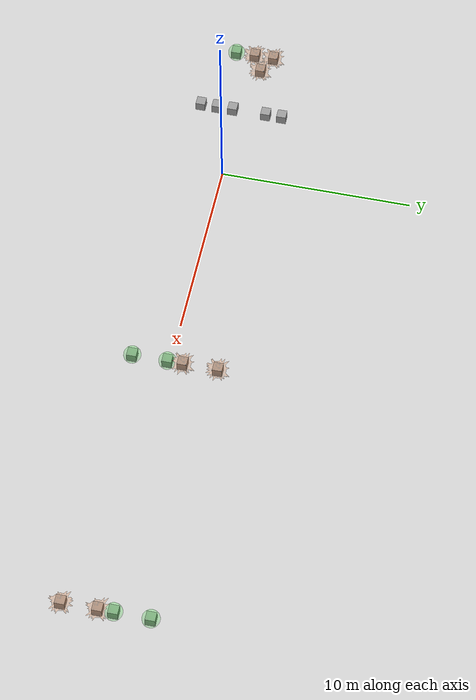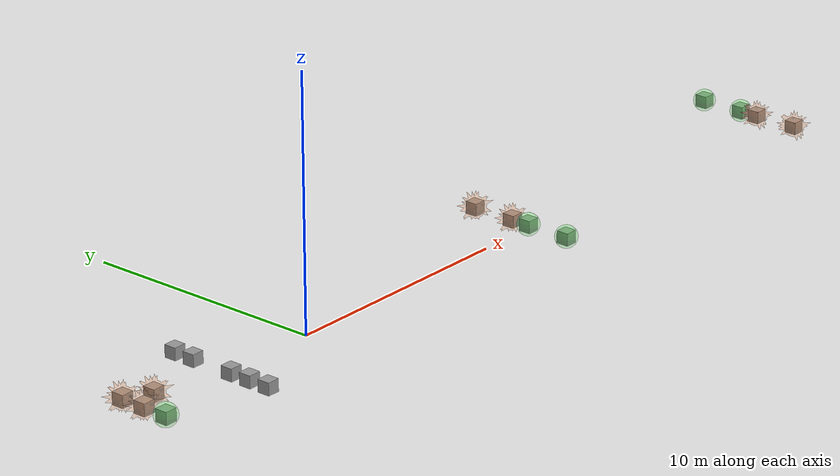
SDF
<sdf version="1.6">
 <world name="default">
  <light name="sun" type="directional">
   <pose>0 0 10 0 -0 0</pose>
   <diffuse>0.8 0.8 0.8 1</diffuse>
   <specular>0.2 0.2 0.2 1</specular>
   <attenuation>
    <range>1000</range>
    <constant>0.9</constant>
    <linear>0.01</linear>
    <quadratic>0.001</quadratic>
   </attenuation>
   <direction>-0.5 0.1 -0.9</direction>
  </light>
  <gravity>0 0 -9.8</gravity>
  <magnetic_field>6e-06 2.3e-05 -4.2e-05</magnetic_field>
  <atmosphere type="adiabatic"/>
  <physics name="default_physics" default="0" type="ode">
   <max_step_size>0.001</max_step_size>
   <real_time_factor>1</real_time_factor>
   <real_time_update_rate>1000</real_time_update_rate>
  </physics>
  <scene><ambient>0.4 0.4 0.4 1</ambient><background>0.9 0.9 0.9 1</background><shadows>1</shadows></scene>
  <spherical_coordinates>
   <surface_model>EARTH_WGS84</surface_model>
   <latitude_deg>0</latitude_deg>
   <longitude_deg>0</longitude_deg>
   <elevation>0</elevation>
   <heading_deg>0</heading_deg>
  </spherical_coordinates>
  <model name="test_cell_II">
   <static>0</static>
   <static>0</static>
   <link name="normal_cue_1::vis_cue_repel">
    <inertial>
     <mass>1</mass>
     <inertia>
      <ixx>0.166667</ixx>
      <ixy>0</ixy>
      <ixz>0</ixz>
      <iyy>0.166667</iyy>
      <iyz>0</iyz>
      <izz>0.166667</izz>
     </inertia>
    </inertial>
    <collision name="collision"><geometry><box><size>0.5 0.5 0.5</size></box></geometry></collision>
    <visual name="box_visual">
     <geometry><box><size>0.5 0.5 0.5</size></box></geometry>
     <material>
      <script><name>Gazebo/Grey</name><uri>file://media/materials/scripts/gazebo.material</uri></script>
     </material>
    </visual>
    <pose>3.9 -2.2 0.25 0 -0 0</pose>
   </link>
   <static>0</static>
   <link name="normal_cue_2::vis_cue_repel">
    <inertial>
     <mass>1</mass>
     <inertia>
      <ixx>0.166667</ixx>
      <ixy>0</ixy>
      <ixz>0</ixz>
      <iyy>0.166667</iyy>
      <iyz>0</iyz>
      <izz>0.166667</izz>
     </inertia>
    </inertial>
    <collision name="collision"><geometry><box><size>0.5 0.5 0.5</size></box></geometry></collision>
    <visual name="box_visual">
     <geometry><box><size>0.5 0.5 0.5</size></box></geometry>
     <material>
      <script><name>Gazebo/Grey</name><uri>file://media/materials/scripts/gazebo.material</uri></script>
     </material>
    </visual>
    <pose>3.9 -1.33 0.25 0 -0 0</pose>
   </link>
   <static>0</static>
   <link name="normal_cue_3::vis_cue_repel">
    <inertial>
     <mass>1</mass>
     <inertia>
      <ixx>0.166667</ixx>
      <ixy>0</ixy>
      <ixz>0</ixz>
      <iyy>0.166667</iyy>
      <iyz>0</iyz>
      <izz>0.166667</izz>
     </inertia>
    </inertial>
    <collision name="collision"><geometry><box><size>0.5 0.5 0.5</size></box></geometry></collision>
    <visual name="box_visual">
     <geometry><box><size>0.5 0.5 0.5</size></box></geometry>
     <material>
      <script><name>Gazebo/Grey</name><uri>file://media/materials/scripts/gazebo.material</uri></script>
     </material>
    </visual>
    <pose>3.9 -0.47 0.25 0 -0 0</pose>
   </link>
   <static>0</static>
   <link name="normal_cue_4::vis_cue_repel">
    <inertial>
     <mass>1</mass>
     <inertia>
      <ixx>0.166667</ixx>
      <ixy>0</ixy>
      <ixz>0</ixz>
      <iyy>0.166667</iyy>
      <iyz>0</iyz>
      <izz>0.166667</izz>
     </inertia>
    </inertial>
    <collision name="collision"><geometry><box><size>0.5 0.5 0.5</size></box></geometry></collision>
    <visual name="box_visual">
     <geometry><box><size>0.5 0.5 0.5</size></box></geometry>
     <material>
      <script><name>Gazebo/Grey</name><uri>file://media/materials/scripts/gazebo.material</uri></script>
     </material>
    </visual>
    <pose>3.9 1.33 0.25 0 -0 0</pose>
   </link>
   <static>0</static>
   <link name="normal_cue_5::vis_cue_repel">
    <inertial>
     <mass>1</mass>
     <inertia>
      <ixx>0.166667</ixx>
      <ixy>0</ixy>
      <ixz>0</ixz>
      <iyy>0.166667</iyy>
      <iyz>0</iyz>
      <izz>0.166667</izz>
     </inertia>
    </inertial>
    <collision name="collision"><geometry><box><size>0.5 0.5 0.5</size></box></geometry></collision>
    <visual name="box_visual">
     <geometry><box><size>0.5 0.5 0.5</size></box></geometry>
     <material>
      <script><name>Gazebo/Grey</name><uri>file://media/materials/scripts/gazebo.material</uri></script>
     </material>
    </visual>
    <pose>3.9 2.2 0.25 0 -0 0</pose>
   </link>
   <static>0</static>
   <link name="repelling_cue_1::vis_cue_repel">
    <inertial>
     <mass>1</mass>
     <inertia>
      <ixx>0.166667</ixx>
      <ixy>0</ixy>
      <ixz>0</ixz>
      <iyy>0.166667</iyy>
      <iyz>0</iyz>
      <izz>0.166667</izz>
     </inertia>
    </inertial>
    <collision name="collision"><geometry><box><size>0.5 0.5 0.5</size></box></geometry></collision>
    <visual name="box_visual">
     <geometry><box><size>0.5 0.5 0.5</size></box></geometry>
     <material>
      <script><name>Gazebo/Grey</name><uri>file://media/materials/scripts/gazebo.material</uri></script>
     </material>
    </visual>
    <visual name="cue_visual">
     <geometry><mesh><uri>model://repelling_cue_2.dae</uri><scale>0.85 0.85 0.85</scale></mesh></geometry>
     <material>
      <ambient>1 0.4 0 0.2</ambient>
      <diffuse>1 0.4 0 0.2</diffuse>
      <specular>1 0.4 0 0.5</specular>
      <emissive>0.5 0.2 0 0.1</emissive>
     </material>
    </visual>
    <pose>0 -0.08 0.25 0 -0 0</pose>
   </link>
   <static>0</static>
   <link name="repelling_cue_2::vis_cue_repel">
    <inertial>
     <mass>1</mass>
     <inertia>
      <ixx>0.166667</ixx>
      <ixy>0</ixy>
      <ixz>0</ixz>
      <iyy>0.166667</iyy>
      <iyz>0</iyz>
      <izz>0.166667</izz>
     </inertia>
    </inertial>
    <collision name="collision"><geometry><box><size>0.5 0.5 0.5</size></box></geometry></collision>
    <visual name="box_visual">
     <geometry><box><size>0.5 0.5 0.5</size></box></geometry>
     <material>
      <script><name>Gazebo/Grey</name><uri>file://media/materials/scripts/gazebo.material</uri></script>
     </material>
    </visual>
    <visual name="cue_visual">
     <geometry><mesh><uri>model://repelling_cue_2.dae</uri><scale>0.85 0.85 0.85</scale></mesh></geometry>
     <material>
      <ambient>1 0.4 0 0.2</ambient>
      <diffuse>1 0.4 0 0.2</diffuse>
      <specular>1 0.4 0 0.5</specular>
      <emissive>0.5 0.2 0 0.1</emissive>
     </material>
    </visual>
    <pose>0 0.94 0.25 0 -0 0</pose>
   </link>
   <static>0</static>
   <link name="repelling_cue_3::vis_cue_repel">
    <inertial>
     <mass>1</mass>
     <inertia>
      <ixx>0.166667</ixx>
      <ixy>0</ixy>
      <ixz>0</ixz>
      <iyy>0.166667</iyy>
      <iyz>0</iyz>
      <izz>0.166667</izz>
     </inertia>
    </inertial>
    <collision name="collision"><geometry><box><size>0.5 0.5 0.5</size></box></geometry></collision>
    <visual name="box_visual">
     <geometry><box><size>0.5 0.5 0.5</size></box></geometry>
     <material>
      <script><name>Gazebo/Grey</name><uri>file://media/materials/scripts/gazebo.material</uri></script>
     </material>
    </visual>
    <visual name="cue_visual">
     <geometry><mesh><uri>model://repelling_cue_2.dae</uri><scale>0.85 0.85 0.85</scale></mesh></geometry>
     <material>
      <ambient>1 0.4 0 0.2</ambient>
      <diffuse>1 0.4 0 0.2</diffuse>
      <specular>1 0.4 0 0.5</specular>
      <emissive>0.5 0.2 0 0.1</emissive>
     </material>
    </visual>
    <pose>1 0.43 0.25 0 -0 0</pose>
   </link>
   <static>0</static>
   <link name="attracting_cue_1::vis_cue_attract">
    <inertial>
     <mass>1</mass>
     <inertia>
      <ixx>0.166667</ixx>
      <ixy>0</ixy>
      <ixz>0</ixz>
      <iyy>0.166667</iyy>
      <iyz>0</iyz>
      <izz>0.166667</izz>
     </inertia>
    </inertial>
    <collision name="collision"><geometry><box><size>0.5 0.5 0.5</size></box></geometry></collision>
    <visual name="box_visual">
     <geometry><box><size>0.5 0.5 0.5</size></box></geometry>
     <material>
      <script><name>Gazebo/Grey</name><uri>file://media/materials/scripts/gazebo.material</uri></script>
     </material>
    </visual>
    <visual name="cue_visual">
     <geometry><sphere><radius>0.45</radius></sphere></geometry>
     <material>
      <ambient>0 1 0 0.15</ambient>
      <diffuse>0 1 0 0.15</diffuse>
      <specular>0 1 0 0.15</specular>
      <emissive>0 0 0 0</emissive>
     </material>
    </visual>
    <pose>0 -1.1 0.25 0 -0 0</pose>
   </link>
   <pose>-8.15814 0.114936 -1.8e-05 7e-06 -7e-06 0</pose>
  </model>
  <model name="test_cell_I">
   <static>0</static>
   <static>0</static>
   <link name="attract_cue_1::vis_cue_attract">
    <inertial>
     <mass>1</mass>
     <inertia>
      <ixx>0.166667</ixx>
      <ixy>0</ixy>
      <ixz>0</ixz>
      <iyy>0.166667</iyy>
      <iyz>0</iyz>
      <izz>0.166667</izz>
     </inertia>
    </inertial>
    <collision name="collision"><geometry><box><size>0.5 0.5 0.5</size></box></geometry></collision>
    <visual name="box_visual">
     <geometry><box><size>0.5 0.5 0.5</size></box></geometry>
     <material>
      <script><name>Gazebo/Grey</name><uri>file://media/materials/scripts/gazebo.material</uri></script>
     </material>
    </visual>
    <visual name="cue_visual">
     <geometry><sphere><radius>0.45</radius></sphere></geometry>
     <material>
      <ambient>0 1 0 0.15</ambient>
      <diffuse>0 1 0 0.15</diffuse>
      <specular>0 1 0 0.15</specular>
      <emissive>0 0 0 0</emissive>
     </material>
    </visual>
    <pose>0 -2.2 0.25 0 -0 0</pose>
   </link>
   <static>0</static>
   <link name="attract_cue_2::vis_cue_attract">
    <inertial>
     <mass>1</mass>
     <inertia>
      <ixx>0.166667</ixx>
      <ixy>0</ixy>
      <ixz>0</ixz>
      <iyy>0.166667</iyy>
      <iyz>0</iyz>
      <izz>0.166667</izz>
     </inertia>
    </inertial>
    <collision name="collision"><geometry><box><size>0.5 0.5 0.5</size></box></geometry></collision>
    <visual name="box_visual">
     <geometry><box><size>0.5 0.5 0.5</size></box></geometry>
     <material>
      <script><name>Gazebo/Grey</name><uri>file://media/materials/scripts/gazebo.material</uri></script>
     </material>
    </visual>
    <visual name="cue_visual">
     <geometry><sphere><radius>0.45</radius></sphere></geometry>
     <material>
      <ambient>0 1 0 0.15</ambient>
      <diffuse>0 1 0 0.15</diffuse>
      <specular>0 1 0 0.15</specular>
      <emissive>0 0 0 0</emissive>
     </material>
    </visual>
    <pose>0 -0.39 0.25 0 -0 0</pose>
   </link>
   <static>0</static>
   <link name="repel_cue_1::vis_cue_repel">
    <inertial>
     <mass>1</mass>
     <inertia>
      <ixx>0.166667</ixx>
      <ixy>0</ixy>
      <ixz>0</ixz>
      <iyy>0.166667</iyy>
      <iyz>0</iyz>
      <izz>0.166667</izz>
     </inertia>
    </inertial>
    <collision name="collision"><geometry><box><size>0.5 0.5 0.5</size></box></geometry></collision>
    <visual name="box_visual">
     <geometry><box><size>0.5 0.5 0.5</size></box></geometry>
     <material>
      <script><name>Gazebo/Grey</name><uri>file://media/materials/scripts/gazebo.material</uri></script>
     </material>
    </visual>
    <visual name="cue_visual">
     <geometry><mesh><uri>model://repelling_cue_2.dae</uri><scale>0.85 0.85 0.85</scale></mesh></geometry>
     <material>
      <ambient>1 0.4 0 0.2</ambient>
      <diffuse>1 0.4 0 0.2</diffuse>
      <specular>1 0.4 0 0.5</specular>
      <emissive>0.5 0.2 0 0.1</emissive>
     </material>
    </visual>
    <pose>0 2.2 0.25 0 -0 0</pose>
   </link>
   <static>0</static>
   <link name="repel_cue_2::vis_cue_repel">
    <inertial>
     <mass>1</mass>
     <inertia>
      <ixx>0.166667</ixx>
      <ixy>0</ixy>
      <ixz>0</ixz>
      <iyy>0.166667</iyy>
      <iyz>0</iyz>
      <izz>0.166667</izz>
     </inertia>
    </inertial>
    <collision name="collision"><geometry><box><size>0.5 0.5 0.5</size></box></geometry></collision>
    <visual name="box_visual">
     <geometry><box><size>0.5 0.5 0.5</size></box></geometry>
     <material>
      <script><name>Gazebo/Grey</name><uri>file://media/materials/scripts/gazebo.material</uri></script>
     </material>
    </visual>
    <visual name="cue_visual">
     <geometry><mesh><uri>model://repelling_cue_2.dae</uri><scale>0.85 0.85 0.85</scale></mesh></geometry>
     <material>
      <ambient>1 0.4 0 0.2</ambient>
      <diffuse>1 0.4 0 0.2</diffuse>
      <specular>1 0.4 0 0.5</specular>
      <emissive>0.5 0.2 0 0.1</emissive>
     </material>
    </visual>
    <pose>0 0.39 0.25 0 -0 0</pose>
   </link>
   <pose>12.3433 0.262142 -1.9e-05 -7e-06 7e-06 0</pose>
  </model>
  <model name="test_cell_I_0">
   <static>0</static>
   <static>0</static>
   <link name="attract_cue_1::vis_cue_attract">
    <inertial>
     <mass>1</mass>
     <inertia>
      <ixx>0.166667</ixx>
      <ixy>0</ixy>
      <ixz>0</ixz>
      <iyy>0.166667</iyy>
      <iyz>0</iyz>
      <izz>0.166667</izz>
     </inertia>
    </inertial>
    <collision name="collision"><geometry><box><size>0.5 0.5 0.5</size></box></geometry></collision>
    <visual name="box_visual">
     <geometry><box><size>0.5 0.5 0.5</size></box></geometry>
     <material>
      <script><name>Gazebo/Grey</name><uri>file://media/materials/scripts/gazebo.material</uri></script>
     </material>
    </visual>
    <visual name="cue_visual">
     <geometry><sphere><radius>0.45</radius></sphere></geometry>
     <material>
      <ambient>0 1 0 0.15</ambient>
      <diffuse>0 1 0 0.15</diffuse>
      <specular>0 1 0 0.15</specular>
      <emissive>0 0 0 0</emissive>
     </material>
    </visual>
    <pose>0 -2.2 0.25 0 -0 0</pose>
   </link>
   <static>0</static>
   <link name="attract_cue_2::vis_cue_attract">
    <inertial>
     <mass>1</mass>
     <inertia>
      <ixx>0.166667</ixx>
      <ixy>0</ixy>
      <ixz>0</ixz>
      <iyy>0.166667</iyy>
      <iyz>0</iyz>
      <izz>0.166667</izz>
     </inertia>
    </inertial>
    <collision name="collision"><geometry><box><size>0.5 0.5 0.5</size></box></geometry></collision>
    <visual name="box_visual">
     <geometry><box><size>0.5 0.5 0.5</size></box></geometry>
     <material>
      <script><name>Gazebo/Grey</name><uri>file://media/materials/scripts/gazebo.material</uri></script>
     </material>
    </visual>
    <visual name="cue_visual">
     <geometry><sphere><radius>0.45</radius></sphere></geometry>
     <material>
      <ambient>0 1 0 0.15</ambient>
      <diffuse>0 1 0 0.15</diffuse>
      <specular>0 1 0 0.15</specular>
      <emissive>0 0 0 0</emissive>
     </material>
    </visual>
    <pose>0 -0.39 0.25 0 -0 0</pose>
   </link>
   <static>0</static>
   <link name="repel_cue_1::vis_cue_repel">
    <inertial>
     <mass>1</mass>
     <inertia>
      <ixx>0.166667</ixx>
      <ixy>0</ixy>
      <ixz>0</ixz>
      <iyy>0.166667</iyy>
      <iyz>0</iyz>
      <izz>0.166667</izz>
     </inertia>
    </inertial>
    <collision name="collision"><geometry><box><size>0.5 0.5 0.5</size></box></geometry></collision>
    <visual name="box_visual">
     <geometry><box><size>0.5 0.5 0.5</size></box></geometry>
     <material>
      <script><name>Gazebo/Grey</name><uri>file://media/materials/scripts/gazebo.material</uri></script>
     </material>
    </visual>
    <visual name="cue_visual">
     <geometry><mesh><uri>model://repelling_cue_2.dae</uri><scale>0.85 0.85 0.85</scale></mesh></geometry>
     <material>
      <ambient>1 0.4 0 0.2</ambient>
      <diffuse>1 0.4 0 0.2</diffuse>
      <specular>1 0.4 0 0.5</specular>
      <emissive>0.5 0.2 0 0.1</emissive>
     </material>
    </visual>
    <pose>0 2.2 0.25 0 -0 0</pose>
   </link>
   <static>0</static>
   <link name="repel_cue_2::vis_cue_repel">
    <inertial>
     <mass>1</mass>
     <inertia>
      <ixx>0.166667</ixx>
      <ixy>0</ixy>
      <ixz>0</ixz>
      <iyy>0.166667</iyy>
      <iyz>0</iyz>
      <izz>0.166667</izz>
     </inertia>
    </inertial>
    <collision name="collision"><geometry><box><size>0.5 0.5 0.5</size></box></geometry></collision>
    <visual name="box_visual">
     <geometry><box><size>0.5 0.5 0.5</size></box></geometry>
     <material>
      <script><name>Gazebo/Grey</name><uri>file://media/materials/scripts/gazebo.material</uri></script>
     </material>
    </visual>
    <visual name="cue_visual">
     <geometry><mesh><uri>model://repelling_cue_2.dae</uri><scale>0.85 0.85 0.85</scale></mesh></geometry>
     <material>
      <ambient>1 0.4 0 0.2</ambient>
      <diffuse>1 0.4 0 0.2</diffuse>
      <specular>1 0.4 0 0.5</specular>
      <emissive>0.5 0.2 0 0.1</emissive>
     </material>
    </visual>
    <pose>0 0.39 0.25 0 -0 0</pose>
   </link>
   <pose>26.8347 0.212742 -2.2e-05 -7e-06 7e-06 -3.14025</pose>
  </model>
 </world>
</sdf>
